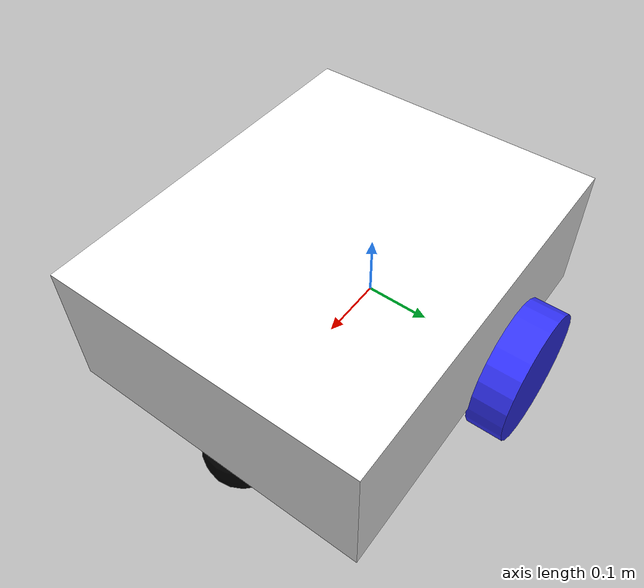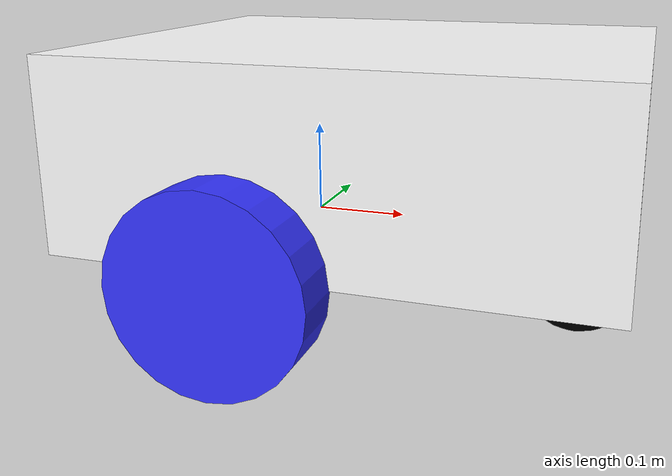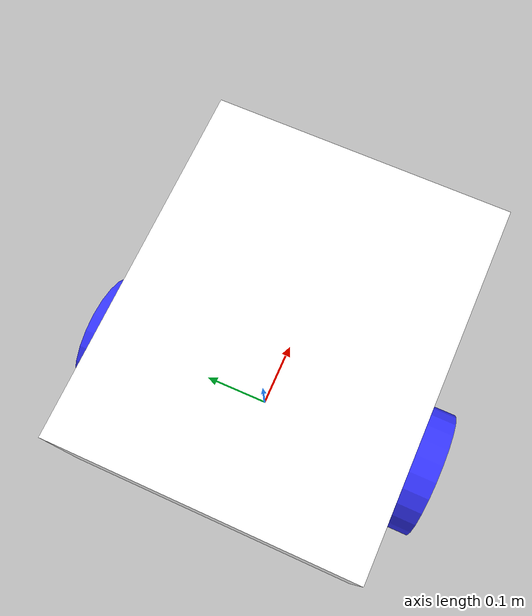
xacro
<?xml version="1.0"?>
<robot xmlns:xacro="http://www.ros.org/wiki/xacro" >

    <xacro:include filename="inertial_macros.xacro"/>

    <material name="white">
        <color rgba="1 1 1 1" />
    </material>

    <material name="orange">
        <color rgba="1 0.3 0.1 1"/>
    </material>

    <material name="blue">
        <color rgba="0.2 0.2 1 1"/>
    </material>

    <material name="black">
        <color rgba="0 0 0 1"/>
    </material>
    <material name="red">
        <color rgba="1 0 0 1"/>
    </material>

    <!-- BASE LINK -->

    <link name="base_link">

    </link>

    <!-- CHASSIS LINK -->

    <joint name="chassis_joint" type="fixed">
        <parent link="base_link"/>
        <child link="chassis"/>
        <origin xyz="-0.20 0 0"/>
    </joint>

    <link name="chassis">
        <visual>
            <origin xyz="0.28 0 0.1"/>
            <geometry>
                <box size="0.56 0.46 0.2"/>
            </geometry>
            <material name="white"/>
        </visual>
        <collision>
            <origin xyz="0.28 0 0.1"/>
            <geometry>
                <box size="0.56 0.46 0.2"/>
            </geometry>
        </collision>
        <xacro:inertial_box mass="5" x="0.56" y="0.46" z="0.2">
            <origin xyz="0.28 0 0.1" rpy="0 0 0"/>
        </xacro:inertial_box>
    </link>

    <gazebo reference="chassis">
        <material>Gazebo/White</material>
    </gazebo>

    <!-- LEFT WHEEL LINK -->

    <joint name="left_wheel_joint" type="continuous">
        <parent link="base_link"/>
        <child link="left_wheel"/>
        <origin xyz="0 0.255 0" rpy="-${pi/2} 0 0" />
        <axis xyz="0 0 1"/>
    </joint>

    <link name="left_wheel">
        <visual>
            <geometry>
                <cylinder radius="0.1" length="0.055"/>
            </geometry>
            <material name="blue"/>
        </visual>
        <collision>
            <geometry>
                <cylinder radius="0.1" length="0.055"/>
            </geometry>
        </collision>
        <xacro:inertial_cylinder mass="0.5" length="0.055" radius="0.10">
            <origin xyz="0 0 0" rpy="0 0 0"/>
        </xacro:inertial_cylinder>
    </link>

    <gazebo reference="left_wheel">
        <material>Gazebo/Blue</material>
    </gazebo>

    <!-- RIGHT WHEEL LINK -->

    <joint name="right_wheel_joint" type="continuous">
        <parent link="base_link"/>
        <child link="right_wheel"/>
        <origin xyz="0 -0.255 0" rpy="${pi/2} 0 0" />
        <axis xyz="0 0 -1"/>
    </joint>

    <link name="right_wheel">
        <visual>
            <geometry>
                <cylinder radius="0.1" length="0.055"/>
            </geometry>
            <material name="blue"/>
        </visual>
        <collision>
            <geometry>
                <cylinder radius="0.1" length="0.055"/>
            </geometry>
        </collision>
        <xacro:inertial_cylinder mass="0.5" length="0.055" radius="0.1">
            <origin xyz="0 0 0" rpy="0 0 0"/>
        </xacro:inertial_cylinder>
    </link>

    <gazebo reference="right_wheel">
        <material>Gazebo/Blue</material>
    </gazebo>

    <!-- CASTER WHEEL LINK -->

    <joint name="caster_wheel_joint" type="fixed">
        <parent link="chassis"/>
        <child link="caster_wheel"/>
        <origin xyz="0.50 0 -0.05"/>
    </joint>

    <link name="caster_wheel">
        <visual>
            <geometry>
                <sphere radius="0.06"/>
            </geometry>
            <material name="black"/>
        </visual>
        <collision>
            <geometry>
                <sphere radius="0.06"/>
            </geometry>
        </collision>
        <xacro:inertial_sphere mass="15" radius="0.06">
            <origin xyz="0 0 0" rpy="0 0 0"/>
        </xacro:inertial_sphere>
    </link>

    <gazebo reference="caster_wheel">
        <mu1>0.0001</mu1>
        <mu2>0.0001</mu2>
        <material>Gazebo/Black</material>
    </gazebo>

</robot>
